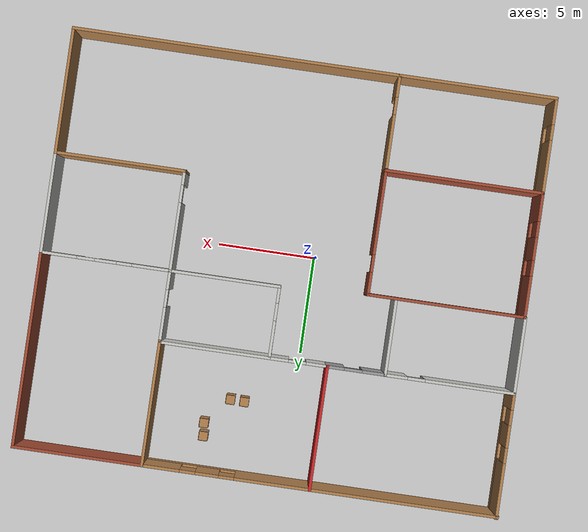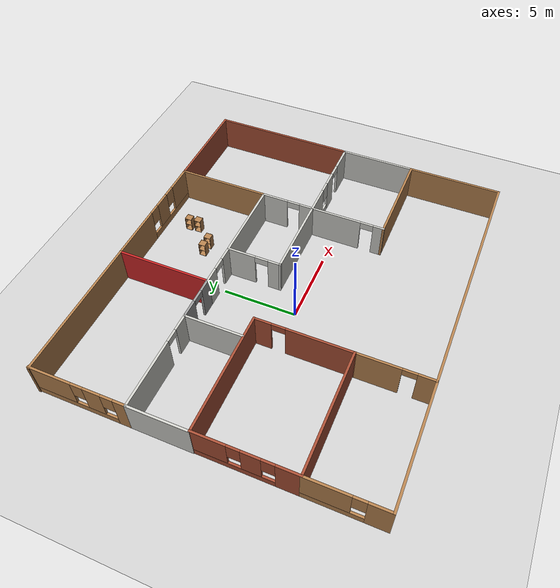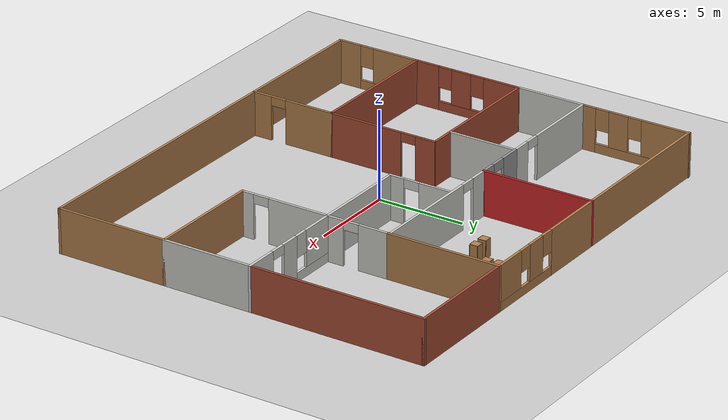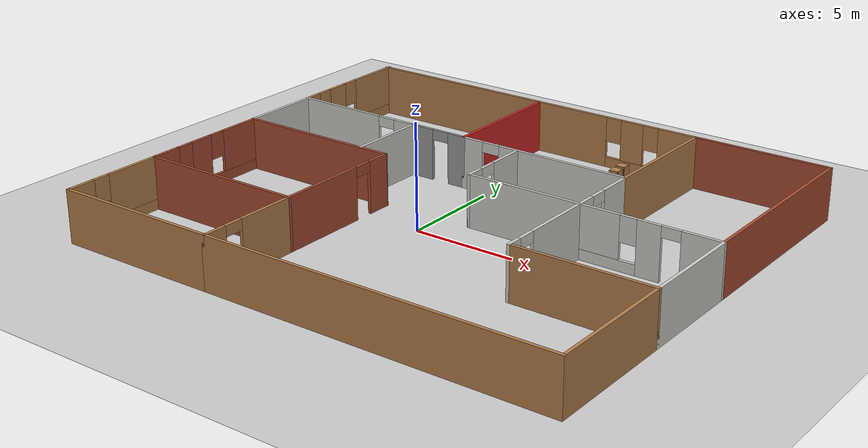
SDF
<sdf version="1.6">
 <world name="default">
  <model name="ground_plane">
   <static>1</static>
   <link name="link">
    <collision name="collision">
     <geometry><plane><normal>0 0 1</normal><size>100 100</size></plane></geometry>
     <surface><friction><ode><mu>100</mu><mu2>50</mu2></ode></friction></surface>
    </collision>
    <visual name="visual">
     <cast_shadows>0</cast_shadows>
     <geometry><plane><normal>0 0 1</normal><size>100 100</size></plane></geometry>
     <material>
      <script><uri>file://media/materials/scripts/gazebo.material</uri><name>Gazebo/Grey</name></script>
     </material>
    </visual>
   </link>
  </model>
  <model name="building">
   <pose>1.3748 0.98314 0 0 -0 0</pose>
   <link name="Wall_102">
    <pose>5.78961 2.52674 0 0 -0 1.5708</pose>
    <visual name="Wall_102_Visual_0">
     <pose>-1.35652 0 1.25 0 -0 0</pose>
     <geometry><box><size>1.03697 0.15 2.5</size></box></geometry>
     <material>
      <script><uri>file://media/materials/scripts/gazebo.material</uri><name>Gazebo/CeilingTiled</name></script>
      <ambient>1 1 1 1</ambient>
     </material>
     <meta><layer>0</layer></meta>
    </visual>
    <collision name="Wall_102_Collision_0">
     <geometry><box><size>1.03697 0.15 2.5</size></box></geometry>
     <pose>-1.35652 0 1.25 0 -0 0</pose>
    </collision>
    <visual name="Wall_102_Visual_1">
     <pose>0.968484 0 1.25 0 -0 0</pose>
     <geometry><box><size>1.81303 0.15 2.5</size></box></geometry>
     <material>
      <script><uri>file://media/materials/scripts/gazebo.material</uri><name>Gazebo/CeilingTiled</name></script>
      <ambient>1 1 1 1</ambient>
     </material>
     <meta><layer>0</layer></meta>
    </visual>
    <collision name="Wall_102_Collision_1">
     <geometry><box><size>1.81303 0.15 2.5</size></box></geometry>
     <pose>0.968484 0 1.25 0 -0 0</pose>
    </collision>
    <visual name="Wall_102_Visual_2">
     <pose>-0.388033 0 2.25 0 -0 0</pose>
     <geometry><box><size>0.9 0.15 0.5</size></box></geometry>
     <material>
      <script><uri>file://media/materials/scripts/gazebo.material</uri><name>Gazebo/CeilingTiled</name></script>
      <ambient>1 1 1 1</ambient>
     </material>
     <meta><layer>0</layer></meta>
    </visual>
    <collision name="Wall_102_Collision_2">
     <geometry><box><size>0.9 0.15 0.5</size></box></geometry>
     <pose>-0.388033 0 2.25 0 -0 0</pose>
    </collision>
   </link>
   <link name="Wall_104">
    <collision name="Wall_104_Collision">
     <geometry><box><size>6.45348 0.15 2.5</size></box></geometry>
     <pose>0 0 1.25 0 -0 0</pose>
    </collision>
    <visual name="Wall_104_Visual">
     <pose>0 0 1.25 0 -0 0</pose>
     <geometry><box><size>6.45348 0.15 2.5</size></box></geometry>
     <material>
      <script><uri>file://media/materials/scripts/gazebo.material</uri><name>Gazebo/Red</name></script>
      <ambient>1 1 1 1</ambient>
     </material>
     <meta><layer>0</layer></meta>
    </visual>
    <pose>-2.78961 7.525 0 0 -0 1.5708</pose>
   </link>
   <link name="Wall_107">
    <collision name="Wall_107_Collision">
     <geometry><box><size>6.5 0.15 2.5</size></box></geometry>
     <pose>0 0 1.25 0 -0 0</pose>
    </collision>
    <visual name="Wall_107_Visual">
     <pose>0 0 1.25 0 -0 0</pose>
     <geometry><box><size>6.5 0.15 2.5</size></box></geometry>
     <material>
      <script><uri>file://media/materials/scripts/gazebo.material</uri><name>Gazebo/Wood</name></script>
      <ambient>1 1 1 1</ambient>
     </material>
     <meta><layer>0</layer></meta>
    </visual>
    <pose>5.78961 7.50174 0 0 -0 1.5708</pose>
   </link>
   <link name="Wall_111">
    <pose>-12.342 7.54826 0 0 -0 1.5708</pose>
    <visual name="Wall_111_Visual_0">
     <pose>-2.8028 0 1.25 0 -0 0</pose>
     <geometry><box><size>0.894393 0.15 2.5</size></box></geometry>
     <material>
      <script><uri>file://media/materials/scripts/gazebo.material</uri><name>Gazebo/Wood</name></script>
      <ambient>1 1 1 1</ambient>
     </material>
     <meta><layer>0</layer></meta>
    </visual>
    <collision name="Wall_111_Collision_0">
     <geometry><box><size>0.894393 0.15 2.5</size></box></geometry>
     <pose>-2.8028 0 1.25 0 -0 0</pose>
    </collision>
    <visual name="Wall_111_Visual_1">
     <pose>0.447197 0 0.25 0 -0 0</pose>
     <geometry><box><size>5.60561 0.15 0.5</size></box></geometry>
     <material>
      <script><uri>file://media/materials/scripts/gazebo.material</uri><name>Gazebo/Wood</name></script>
      <ambient>1 1 1 1</ambient>
     </material>
     <meta><layer>0</layer></meta>
    </visual>
    <collision name="Wall_111_Collision_1">
     <geometry><box><size>5.60561 0.15 0.5</size></box></geometry>
     <pose>0.447197 0 0.25 0 -0 0</pose>
    </collision>
    <visual name="Wall_111_Visual_2">
     <pose>-0.984121 0 1.5 0 -0 0</pose>
     <geometry><box><size>1.14297 0.15 2</size></box></geometry>
     <material>
      <script><uri>file://media/materials/scripts/gazebo.material</uri><name>Gazebo/Wood</name></script>
      <ambient>1 1 1 1</ambient>
     </material>
     <meta><layer>0</layer></meta>
    </visual>
    <collision name="Wall_111_Collision_2">
     <geometry><box><size>1.14297 0.15 2</size></box></geometry>
     <pose>-0.984121 0 1.5 0 -0 0</pose>
    </collision>
    <visual name="Wall_111_Visual_3">
     <pose>1.81868 0 1.5 0 -0 0</pose>
     <geometry><box><size>2.86264 0.15 2</size></box></geometry>
     <material>
      <script><uri>file://media/materials/scripts/gazebo.material</uri><name>Gazebo/Wood</name></script>
      <ambient>1 1 1 1</ambient>
     </material>
     <meta><layer>0</layer></meta>
    </visual>
    <collision name="Wall_111_Collision_3">
     <geometry><box><size>2.86264 0.15 2</size></box></geometry>
     <pose>1.81868 0 1.5 0 -0 0</pose>
    </collision>
    <visual name="Wall_111_Visual_4">
     <pose>-1.95561 0 1.9 0 -0 0</pose>
     <geometry><box><size>0.8 0.15 1.2</size></box></geometry>
     <material>
      <script><uri>file://media/materials/scripts/gazebo.material</uri><name>Gazebo/Wood</name></script>
      <ambient>1 1 1 1</ambient>
     </material>
     <meta><layer>0</layer></meta>
    </visual>
    <collision name="Wall_111_Collision_4">
     <geometry><box><size>0.8 0.15 1.2</size></box></geometry>
     <pose>-1.95561 0 1.9 0 -0 0</pose>
    </collision>
    <visual name="Wall_111_Visual_5">
     <pose>-0.012636 0 1.9 0 -0 0</pose>
     <geometry><box><size>0.8 0.15 1.2</size></box></geometry>
     <material>
      <script><uri>file://media/materials/scripts/gazebo.material</uri><name>Gazebo/Wood</name></script>
      <ambient>1 1 1 1</ambient>
     </material>
     <meta><layer>0</layer></meta>
    </visual>
    <collision name="Wall_111_Collision_5">
     <geometry><box><size>0.8 0.15 1.2</size></box></geometry>
     <pose>-0.012636 0 1.9 0 -0 0</pose>
    </collision>
   </link>
   <link name="Wall_115">
    <collision name="Wall_115_Collision">
     <geometry><box><size>9.75 0.15 2.5</size></box></geometry>
     <pose>0 0 1.25 0 -0 0</pose>
    </collision>
    <visual name="Wall_115_Visual">
     <pose>0 0 1.25 0 -0 0</pose>
     <geometry><box><size>9.75 0.15 2.5</size></box></geometry>
     <material>
      <script><uri>file://media/materials/scripts/gazebo.material</uri><name>Gazebo/Wood</name></script>
      <ambient>1 1 1 1</ambient>
     </material>
     <meta><layer>0</layer></meta>
    </visual>
    <pose>-7.58961 10.6767 0 0 -0 3.14159</pose>
   </link>
   <link name="Wall_118">
    <collision name="Wall_118_Collision">
     <geometry><box><size>6.75 0.15 2.5</size></box></geometry>
     <pose>0 0 1.25 0 -0 0</pose>
    </collision>
    <visual name="Wall_118_Visual">
     <pose>0 0 1.25 0 -0 0</pose>
     <geometry><box><size>6.75 0.15 2.5</size></box></geometry>
     <material>
      <script><uri>file://media/materials/scripts/gazebo.material</uri><name>Gazebo/Bricks</name></script>
      <ambient>1 1 1 1</ambient>
     </material>
     <meta><layer>0</layer></meta>
    </visual>
    <pose>9.08961 10.6767 0 0 -0 0</pose>
   </link>
   <link name="Wall_119">
    <collision name="Wall_119_Collision">
     <geometry><box><size>10 0.15 2.5</size></box></geometry>
     <pose>0 0 1.25 0 -0 0</pose>
    </collision>
    <visual name="Wall_119_Visual">
     <pose>0 0 1.25 0 -0 0</pose>
     <geometry><box><size>10 0.15 2.5</size></box></geometry>
     <material>
      <script><uri>file://media/materials/scripts/gazebo.material</uri><name>Gazebo/Bricks</name></script>
      <ambient>1 1 1 1</ambient>
     </material>
     <meta><layer>0</layer></meta>
    </visual>
    <pose>12.3896 5.75174 0 0 0 -1.5708</pose>
   </link>
   <link name="Wall_14">
    <collision name="Wall_14_Collision">
     <geometry><box><size>8.1171 0.15 2.5</size></box></geometry>
     <pose>0 0 1.25 0 -0 0</pose>
    </collision>
    <visual name="Wall_14_Visual">
     <pose>0 0 1.25 0 -0 0</pose>
     <geometry><box><size>8.1171 0.15 2.5</size></box></geometry>
     <material>
      <script><uri>file://media/materials/scripts/gazebo.material</uri><name>Gazebo/Wood</name></script>
      <ambient>1 1 1 1</ambient>
     </material>
     <meta><layer>0</layer></meta>
    </visual>
    <pose>-8.32684 -10.7233 0 0 -0 0</pose>
   </link>
   <link name="Wall_16">
    <pose>-4.29676 -8.29826 0 0 -0 1.5708</pose>
    <visual name="Wall_16_Visual_0">
     <pose>-1.90821 0 1.25 0 -0 0</pose>
     <geometry><box><size>1.18359 0.15 2.5</size></box></geometry>
     <material>
      <script><uri>file://media/materials/scripts/gazebo.material</uri><name>Gazebo/Wood</name></script>
      <ambient>1 1 1 1</ambient>
     </material>
     <meta><layer>0</layer></meta>
    </visual>
    <collision name="Wall_16_Collision_0">
     <geometry><box><size>1.18359 0.15 2.5</size></box></geometry>
     <pose>-1.90821 0 1.25 0 -0 0</pose>
    </collision>
    <visual name="Wall_16_Visual_1">
     <pose>1.04179 0 1.25 0 -0 0</pose>
     <geometry><box><size>2.91641 0.15 2.5</size></box></geometry>
     <material>
      <script><uri>file://media/materials/scripts/gazebo.material</uri><name>Gazebo/Wood</name></script>
      <ambient>1 1 1 1</ambient>
     </material>
     <meta><layer>0</layer></meta>
    </visual>
    <collision name="Wall_16_Collision_1">
     <geometry><box><size>2.91641 0.15 2.5</size></box></geometry>
     <pose>1.04179 0 1.25 0 -0 0</pose>
    </collision>
    <visual name="Wall_16_Visual_2">
     <pose>-0.866411 0 2.25 0 -0 0</pose>
     <geometry><box><size>0.9 0.15 0.5</size></box></geometry>
     <material>
      <script><uri>file://media/materials/scripts/gazebo.material</uri><name>Gazebo/Wood</name></script>
      <ambient>1 1 1 1</ambient>
     </material>
     <meta><layer>0</layer></meta>
    </visual>
    <collision name="Wall_16_Collision_2">
     <geometry><box><size>0.9 0.15 0.5</size></box></geometry>
     <pose>-0.866411 0 2.25 0 -0 0</pose>
    </collision>
   </link>
   <link name="Wall_20">
    <pose>-12.3104 -8.29826 0 0 -0 1.5708</pose>
    <visual name="Wall_20_Visual_0">
     <pose>-1.79068 0 1.25 0 -0 0</pose>
     <geometry><box><size>1.41863 0.15 2.5</size></box></geometry>
     <material>
      <script><uri>file://media/materials/scripts/gazebo.material</uri><name>Gazebo/Wood</name></script>
      <ambient>1 1 1 1</ambient>
     </material>
     <meta><layer>0</layer></meta>
    </visual>
    <collision name="Wall_20_Collision_0">
     <geometry><box><size>1.41863 0.15 2.5</size></box></geometry>
     <pose>-1.79068 0 1.25 0 -0 0</pose>
    </collision>
    <visual name="Wall_20_Visual_1">
     <pose>0.709317 0 0.25 0 -0 0</pose>
     <geometry><box><size>3.58137 0.15 0.5</size></box></geometry>
     <material>
      <script><uri>file://media/materials/scripts/gazebo.material</uri><name>Gazebo/Wood</name></script>
      <ambient>1 1 1 1</ambient>
     </material>
     <meta><layer>0</layer></meta>
    </visual>
    <collision name="Wall_20_Collision_1">
     <geometry><box><size>3.58137 0.15 0.5</size></box></geometry>
     <pose>0.709317 0 0.25 0 -0 0</pose>
    </collision>
    <visual name="Wall_20_Visual_2">
     <pose>1.10932 0 1.5 0 -0 0</pose>
     <geometry><box><size>2.78137 0.15 2</size></box></geometry>
     <material>
      <script><uri>file://media/materials/scripts/gazebo.material</uri><name>Gazebo/Wood</name></script>
      <ambient>1 1 1 1</ambient>
     </material>
     <meta><layer>0</layer></meta>
    </visual>
    <collision name="Wall_20_Collision_2">
     <geometry><box><size>2.78137 0.15 2</size></box></geometry>
     <pose>1.10932 0 1.5 0 -0 0</pose>
    </collision>
    <visual name="Wall_20_Visual_3">
     <pose>-0.681367 0 1.9 0 -0 0</pose>
     <geometry><box><size>0.8 0.15 1.2</size></box></geometry>
     <material>
      <script><uri>file://media/materials/scripts/gazebo.material</uri><name>Gazebo/Wood</name></script>
      <ambient>1 1 1 1</ambient>
     </material>
     <meta><layer>0</layer></meta>
    </visual>
    <collision name="Wall_20_Collision_3">
     <geometry><box><size>0.8 0.15 1.2</size></box></geometry>
     <pose>-0.681367 0 1.9 0 -0 0</pose>
    </collision>
   </link>
   <link name="Wall_22">
    <collision name="Wall_22_Collision">
     <geometry><box><size>8.16363 0.15 2.5</size></box></geometry>
     <pose>0 0 1.25 0 -0 0</pose>
    </collision>
    <visual name="Wall_22_Visual">
     <pose>0 0 1.25 0 -0 0</pose>
     <geometry><box><size>8.16363 0.15 2.5</size></box></geometry>
     <material>
      <script><uri>file://media/materials/scripts/gazebo.material</uri><name>Gazebo/Bricks</name></script>
      <ambient>1 1 1 1</ambient>
     </material>
     <meta><layer>0</layer></meta>
    </visual>
    <pose>-8.30358 -5.87326 0 0 -0 0</pose>
   </link>
   <link name="Wall_24">
    <collision name="Wall_24_Collision">
     <geometry><box><size>16.8829 0.15 2.5</size></box></geometry>
     <pose>0 0 1.25 0 -0 0</pose>
    </collision>
    <visual name="Wall_24_Visual">
     <pose>0 0 1.25 0 -0 0</pose>
     <geometry><box><size>16.8829 0.15 2.5</size></box></geometry>
     <material>
      <script><uri>file://media/materials/scripts/gazebo.material</uri><name>Gazebo/Wood</name></script>
      <ambient>1 1 1 1</ambient>
     </material>
     <meta><layer>0</layer></meta>
    </visual>
    <pose>4.02316 -10.7233 0 0 -0 0</pose>
   </link>
   <link name="Wall_26">
    <collision name="Wall_26_Collision">
     <geometry><box><size>6.5 0.15 2.5</size></box></geometry>
     <pose>0 0 1.25 0 -0 0</pose>
    </collision>
    <visual name="Wall_26_Visual">
     <pose>0 0 1.25 0 -0 0</pose>
     <geometry><box><size>6.5 0.15 2.5</size></box></geometry>
     <material>
      <script><uri>file://media/materials/scripts/gazebo.material</uri><name>Gazebo/Wood</name></script>
      <ambient>1 1 1 1</ambient>
     </material>
     <meta><layer>0</layer></meta>
    </visual>
    <pose>12.3896 -7.54826 0 0 -0 1.5708</pose>
   </link>
   <link name="Wall_27">
    <collision name="Wall_27_Collision">
     <geometry><box><size>6.75 0.15 2.5</size></box></geometry>
     <pose>0 0 1.25 0 -0 0</pose>
    </collision>
    <visual name="Wall_27_Visual">
     <pose>0 0 1.25 0 -0 0</pose>
     <geometry><box><size>6.75 0.15 2.5</size></box></geometry>
     <material>
      <script><uri>file://media/materials/scripts/gazebo.material</uri><name>Gazebo/Wood</name></script>
      <ambient>1 1 1 1</ambient>
     </material>
     <meta><layer>0</layer></meta>
    </visual>
    <pose>9.08961 -4.37326 0 0 -0 3.14159</pose>
   </link>
   <link name="Wall_33">
    <pose>-12.3104 -2.69826 0 0 -0 1.5708</pose>
    <visual name="Wall_33_Visual_0">
     <pose>-2.49071 0 1.25 0 -0 0</pose>
     <geometry><box><size>1.51858 0.15 2.5</size></box></geometry>
     <material>
      <script><uri>file://media/materials/scripts/gazebo.material</uri><name>Gazebo/Bricks</name></script>
      <ambient>1 1 1 1</ambient>
     </material>
     <meta><layer>0</layer></meta>
    </visual>
    <collision name="Wall_33_Collision_0">
     <geometry><box><size>1.51858 0.15 2.5</size></box></geometry>
     <pose>-2.49071 0 1.25 0 -0 0</pose>
    </collision>
    <visual name="Wall_33_Visual_1">
     <pose>0.759292 0 0.25 0 -0 0</pose>
     <geometry><box><size>4.98142 0.15 0.5</size></box></geometry>
     <material>
      <script><uri>file://media/materials/scripts/gazebo.material</uri><name>Gazebo/Bricks</name></script>
      <ambient>1 1 1 1</ambient>
     </material>
     <meta><layer>0</layer></meta>
    </visual>
    <collision name="Wall_33_Collision_1">
     <geometry><box><size>4.98142 0.15 0.5</size></box></geometry>
     <pose>0.759292 0 0.25 0 -0 0</pose>
    </collision>
    <visual name="Wall_33_Visual_2">
     <pose>-0.3368 0 1.5 0 -0 0</pose>
     <geometry><box><size>1.18923 0.15 2</size></box></geometry>
     <material>
      <script><uri>file://media/materials/scripts/gazebo.material</uri><name>Gazebo/Bricks</name></script>
      <ambient>1 1 1 1</ambient>
     </material>
     <meta><layer>0</layer></meta>
    </visual>
    <collision name="Wall_33_Collision_2">
     <geometry><box><size>1.18923 0.15 2</size></box></geometry>
     <pose>-0.3368 0 1.5 0 -0 0</pose>
    </collision>
    <visual name="Wall_33_Visual_3">
     <pose>2.15391 0 1.5 0 -0 0</pose>
     <geometry><box><size>2.19218 0.15 2</size></box></geometry>
     <material>
      <script><uri>file://media/materials/scripts/gazebo.material</uri><name>Gazebo/Bricks</name></script>
      <ambient>1 1 1 1</ambient>
     </material>
     <meta><layer>0</layer></meta>
    </visual>
    <collision name="Wall_33_Collision_3">
     <geometry><box><size>2.19218 0.15 2</size></box></geometry>
     <pose>2.15391 0 1.5 0 -0 0</pose>
    </collision>
    <visual name="Wall_33_Visual_4">
     <pose>-1.33142 0 1.9 0 -0 0</pose>
     <geometry><box><size>0.8 0.15 1.2</size></box></geometry>
     <material>
      <script><uri>file://media/materials/scripts/gazebo.material</uri><name>Gazebo/Bricks</name></script>
      <ambient>1 1 1 1</ambient>
     </material>
     <meta><layer>0</layer></meta>
    </visual>
    <collision name="Wall_33_Collision_4">
     <geometry><box><size>0.8 0.15 1.2</size></box></geometry>
     <pose>-1.33142 0 1.9 0 -0 0</pose>
    </collision>
    <visual name="Wall_33_Visual_5">
     <pose>0.657816 0 1.9 0 -0 0</pose>
     <geometry><box><size>0.8 0.15 1.2</size></box></geometry>
     <material>
      <script><uri>file://media/materials/scripts/gazebo.material</uri><name>Gazebo/Bricks</name></script>
      <ambient>1 1 1 1</ambient>
     </material>
     <meta><layer>0</layer></meta>
    </visual>
    <collision name="Wall_33_Collision_5">
     <geometry><box><size>0.8 0.15 1.2</size></box></geometry>
     <pose>0.657816 0 1.9 0 -0 0</pose>
    </collision>
   </link>
   <link name="Wall_34">
    <collision name="Wall_34_Collision">
     <geometry><box><size>8.16363 0.15 2.5</size></box></geometry>
     <pose>0 0 1.25 0 -0 0</pose>
    </collision>
    <visual name="Wall_34_Visual">
     <pose>0 0 1.25 0 -0 0</pose>
     <geometry><box><size>8.16363 0.15 2.5</size></box></geometry>
     <material>
      <script><uri>file://media/materials/scripts/gazebo.material</uri><name>Gazebo/Bricks</name></script>
      <ambient>1 1 1 1</ambient>
     </material>
     <meta><layer>0</layer></meta>
    </visual>
    <pose>-8.30358 0.476738 0 0 -0 0</pose>
   </link>
   <link name="Wall_35">
    <pose>-4.29676 -2.74479 0 0 0 -1.5708</pose>
    <visual name="Wall_35_Visual_0">
     <pose>-2.66441 0 1.25 0 -0 0</pose>
     <geometry><box><size>1.17118 0.15 2.5</size></box></geometry>
     <material>
      <script><uri>file://media/materials/scripts/gazebo.material</uri><name>Gazebo/Bricks</name></script>
      <ambient>1 1 1 1</ambient>
     </material>
     <meta><layer>0</layer></meta>
    </visual>
    <collision name="Wall_35_Collision_0">
     <geometry><box><size>1.17118 0.15 2.5</size></box></geometry>
     <pose>-2.66441 0 1.25 0 -0 0</pose>
    </collision>
    <visual name="Wall_35_Visual_1">
     <pose>1.03559 0 1.25 0 -0 0</pose>
     <geometry><box><size>4.42882 0.15 2.5</size></box></geometry>
     <material>
      <script><uri>file://media/materials/scripts/gazebo.material</uri><name>Gazebo/Bricks</name></script>
      <ambient>1 1 1 1</ambient>
     </material>
     <meta><layer>0</layer></meta>
    </visual>
    <collision name="Wall_35_Collision_1">
     <geometry><box><size>4.42882 0.15 2.5</size></box></geometry>
     <pose>1.03559 0 1.25 0 -0 0</pose>
    </collision>
    <visual name="Wall_35_Visual_2">
     <pose>-1.62882 0 2.25 0 -0 0</pose>
     <geometry><box><size>0.9 0.15 0.5</size></box></geometry>
     <material>
      <script><uri>file://media/materials/scripts/gazebo.material</uri><name>Gazebo/Bricks</name></script>
      <ambient>1 1 1 1</ambient>
     </material>
     <meta><layer>0</layer></meta>
    </visual>
    <collision name="Wall_35_Collision_2">
     <geometry><box><size>0.9 0.15 0.5</size></box></geometry>
     <pose>-1.62882 0 2.25 0 -0 0</pose>
    </collision>
   </link>
   <link name="Wall_69">
    <pose>1.46157 10.6767 0 0 -0 0</pose>
    <visual name="Wall_69_Visual_0">
     <pose>-2.34247 0 1.25 0 -0 0</pose>
     <geometry><box><size>3.92114 0.15 2.5</size></box></geometry>
     <material>
      <script><uri>file://media/materials/scripts/gazebo.material</uri><name>Gazebo/Wood</name></script>
      <ambient>1 1 1 1</ambient>
     </material>
     <meta><layer>0</layer></meta>
    </visual>
    <collision name="Wall_69_Collision_0">
     <geometry><box><size>3.92114 0.15 2.5</size></box></geometry>
     <pose>-2.34247 0 1.25 0 -0 0</pose>
    </collision>
    <visual name="Wall_69_Visual_1">
     <pose>1.96057 0 0.25 0 -0 0</pose>
     <geometry><box><size>4.68495 0.15 0.5</size></box></geometry>
     <material>
      <script><uri>file://media/materials/scripts/gazebo.material</uri><name>Gazebo/Wood</name></script>
      <ambient>1 1 1 1</ambient>
     </material>
     <meta><layer>0</layer></meta>
    </visual>
    <collision name="Wall_69_Collision_1">
     <geometry><box><size>4.68495 0.15 0.5</size></box></geometry>
     <pose>1.96057 0 0.25 0 -0 0</pose>
    </collision>
    <visual name="Wall_69_Visual_2">
     <pose>1.01271 0 1.5 0 -0 0</pose>
     <geometry><box><size>1.18923 0.15 2</size></box></geometry>
     <material>
      <script><uri>file://media/materials/scripts/gazebo.material</uri><name>Gazebo/Wood</name></script>
      <ambient>1 1 1 1</ambient>
     </material>
     <meta><layer>0</layer></meta>
    </visual>
    <collision name="Wall_69_Collision_2">
     <geometry><box><size>1.18923 0.15 2</size></box></geometry>
     <pose>1.01271 0 1.5 0 -0 0</pose>
    </collision>
    <visual name="Wall_69_Visual_3">
     <pose>3.35519 0 1.5 0 -0 0</pose>
     <geometry><box><size>1.89572 0.15 2</size></box></geometry>
     <material>
      <script><uri>file://media/materials/scripts/gazebo.material</uri><name>Gazebo/Wood</name></script>
      <ambient>1 1 1 1</ambient>
     </material>
     <meta><layer>0</layer></meta>
    </visual>
    <collision name="Wall_69_Collision_3">
     <geometry><box><size>1.89572 0.15 2</size></box></geometry>
     <pose>3.35519 0 1.5 0 -0 0</pose>
    </collision>
    <visual name="Wall_69_Visual_4">
     <pose>0.018094 0 1.9 0 -0 0</pose>
     <geometry><box><size>0.8 0.15 1.2</size></box></geometry>
     <material>
      <script><uri>file://media/materials/scripts/gazebo.material</uri><name>Gazebo/Wood</name></script>
      <ambient>1 1 1 1</ambient>
     </material>
     <meta><layer>0</layer></meta>
    </visual>
    <collision name="Wall_69_Collision_4">
     <geometry><box><size>0.8 0.15 1.2</size></box></geometry>
     <pose>0.018094 0 1.9 0 -0 0</pose>
    </collision>
    <visual name="Wall_69_Visual_5">
     <pose>2.00733 0 1.9 0 -0 0</pose>
     <geometry><box><size>0.8 0.15 1.2</size></box></geometry>
     <material>
      <script><uri>file://media/materials/scripts/gazebo.material</uri><name>Gazebo/Wood</name></script>
      <ambient>1 1 1 1</ambient>
     </material>
     <meta><layer>0</layer></meta>
    </visual>
    <collision name="Wall_69_Collision_5">
     <geometry><box><size>0.8 0.15 1.2</size></box></geometry>
     <pose>2.00733 0 1.9 0 -0 0</pose>
    </collision>
   </link>
   <link name="Wall_72">
    <collision name="Wall_72_Collision">
     <geometry><box><size>5.25 0.15 2.5</size></box></geometry>
     <pose>0 0 1.25 0 -0 0</pose>
    </collision>
    <visual name="Wall_72_Visual">
     <pose>0 0 1.25 0 -0 0</pose>
     <geometry><box><size>5.25 0.15 2.5</size></box></geometry>
     <material>
      <script><uri>file://media/materials/scripts/gazebo.material</uri><name>Gazebo/CeilingTiled</name></script>
      <ambient>1 1 1 1</ambient>
     </material>
     <meta><layer>0</layer></meta>
    </visual>
    <pose>12.3896 -1.82326 0 0 -0 1.5708</pose>
   </link>
   <link name="Wall_75">
    <pose>5.78961 -1.82326 0 0 -0 1.5708</pose>
    <visual name="Wall_75_Visual_0">
     <pose>-2.23326 0 1.25 0 -0 0</pose>
     <geometry><box><size>0.783487 0.15 2.5</size></box></geometry>
     <material>
      <script><uri>file://media/materials/scripts/gazebo.material</uri><name>Gazebo/CeilingTiled</name></script>
      <ambient>1 1 1 1</ambient>
     </material>
     <meta><layer>0</layer></meta>
    </visual>
    <collision name="Wall_75_Collision_0">
     <geometry><box><size>0.783487 0.15 2.5</size></box></geometry>
     <pose>-2.23326 0 1.25 0 -0 0</pose>
    </collision>
    <visual name="Wall_75_Visual_1">
     <pose>0.841744 0 1.25 0 -0 0</pose>
     <geometry><box><size>3.56651 0.15 2.5</size></box></geometry>
     <material>
      <script><uri>file://media/materials/scripts/gazebo.material</uri><name>Gazebo/CeilingTiled</name></script>
      <ambient>1 1 1 1</ambient>
     </material>
     <meta><layer>0</layer></meta>
    </visual>
    <collision name="Wall_75_Collision_1">
     <geometry><box><size>3.56651 0.15 2.5</size></box></geometry>
     <pose>0.841744 0 1.25 0 -0 0</pose>
    </collision>
    <visual name="Wall_75_Visual_2">
     <pose>-1.39151 0 2.25 0 -0 0</pose>
     <geometry><box><size>0.9 0.15 0.5</size></box></geometry>
     <material>
      <script><uri>file://media/materials/scripts/gazebo.material</uri><name>Gazebo/CeilingTiled</name></script>
      <ambient>1 1 1 1</ambient>
     </material>
     <meta><layer>0</layer></meta>
    </visual>
    <collision name="Wall_75_Collision_2">
     <geometry><box><size>0.9 0.15 0.5</size></box></geometry>
     <pose>-1.39151 0 2.25 0 -0 0</pose>
    </collision>
   </link>
   <link name="Wall_77">
    <pose>9.08961 0.726738 0 0 -0 3.14159</pose>
    <visual name="Wall_77_Visual_0">
     <pose>-2.4187 0 1.25 0 -0 0</pose>
     <geometry><box><size>1.91261 0.15 2.5</size></box></geometry>
     <material>
      <script><uri>file://media/materials/scripts/gazebo.material</uri><name>Gazebo/CeilingTiled</name></script>
      <ambient>1 1 1 1</ambient>
     </material>
     <meta><layer>0</layer></meta>
    </visual>
    <collision name="Wall_77_Collision_0">
     <geometry><box><size>1.91261 0.15 2.5</size></box></geometry>
     <pose>-2.4187 0 1.25 0 -0 0</pose>
    </collision>
    <visual name="Wall_77_Visual_1">
     <pose>-0.007028 0 1.25 0 -0 0</pose>
     <geometry><box><size>1.11073 0.15 2.5</size></box></geometry>
     <material>
      <script><uri>file://media/materials/scripts/gazebo.material</uri><name>Gazebo/CeilingTiled</name></script>
      <ambient>1 1 1 1</ambient>
     </material>
     <meta><layer>0</layer></meta>
    </visual>
    <collision name="Wall_77_Collision_1">
     <geometry><box><size>1.11073 0.15 2.5</size></box></geometry>
     <pose>-0.007028 0 1.25 0 -0 0</pose>
    </collision>
    <visual name="Wall_77_Visual_2">
     <pose>1.96167 0 0.25 0 -0 0</pose>
     <geometry><box><size>2.82666 0.15 0.5</size></box></geometry>
     <material>
      <script><uri>file://media/materials/scripts/gazebo.material</uri><name>Gazebo/CeilingTiled</name></script>
      <ambient>1 1 1 1</ambient>
     </material>
     <meta><layer>0</layer></meta>
    </visual>
    <collision name="Wall_77_Collision_2">
     <geometry><box><size>2.82666 0.15 0.5</size></box></geometry>
     <pose>1.96167 0 0.25 0 -0 0</pose>
    </collision>
    <visual name="Wall_77_Visual_3">
     <pose>2.36167 0 1.5 0 -0 0</pose>
     <geometry><box><size>2.02666 0.15 2</size></box></geometry>
     <material>
      <script><uri>file://media/materials/scripts/gazebo.material</uri><name>Gazebo/CeilingTiled</name></script>
      <ambient>1 1 1 1</ambient>
     </material>
     <meta><layer>0</layer></meta>
    </visual>
    <collision name="Wall_77_Collision_3">
     <geometry><box><size>2.02666 0.15 2</size></box></geometry>
     <pose>2.36167 0 1.5 0 -0 0</pose>
    </collision>
    <visual name="Wall_77_Visual_4">
     <pose>0.948336 0 1.9 0 -0 0</pose>
     <geometry><box><size>0.8 0.15 1.2</size></box></geometry>
     <material>
      <script><uri>file://media/materials/scripts/gazebo.material</uri><name>Gazebo/CeilingTiled</name></script>
      <ambient>1 1 1 1</ambient>
     </material>
     <meta><layer>0</layer></meta>
    </visual>
    <collision name="Wall_77_Collision_4">
     <geometry><box><size>0.8 0.15 1.2</size></box></geometry>
     <pose>0.948336 0 1.9 0 -0 0</pose>
    </collision>
    <visual name="Wall_77_Visual_5">
     <pose>-1.01239 0 2.25 0 -0 0</pose>
     <geometry><box><size>0.9 0.15 0.5</size></box></geometry>
     <material>
      <script><uri>file://media/materials/scripts/gazebo.material</uri><name>Gazebo/CeilingTiled</name></script>
      <ambient>1 1 1 1</ambient>
     </material>
     <meta><layer>0</layer></meta>
    </visual>
    <collision name="Wall_77_Collision_5">
     <geometry><box><size>0.9 0.15 0.5</size></box></geometry>
     <pose>-1.01239 0 2.25 0 -0 0</pose>
    </collision>
   </link>
   <link name="Wall_83">
    <pose>1.47078 4.37326 0 0 -0 0</pose>
    <visual name="Wall_83_Visual_0">
     <pose>-3.73839 0 1.25 0 -0 0</pose>
     <geometry><box><size>1.14775 0.15 2.5</size></box></geometry>
     <material>
      <script><uri>file://media/materials/scripts/gazebo.material</uri><name>Gazebo/CeilingTiled</name></script>
      <ambient>1 1 1 1</ambient>
     </material>
     <meta><layer>0</layer></meta>
    </visual>
    <collision name="Wall_83_Collision_0">
     <geometry><box><size>1.14775 0.15 2.5</size></box></geometry>
     <pose>-3.73839 0 1.25 0 -0 0</pose>
    </collision>
    <visual name="Wall_83_Visual_1">
     <pose>1.02388 0 1.25 0 -0 0</pose>
     <geometry><box><size>6.57677 0.15 2.5</size></box></geometry>
     <material>
      <script><uri>file://media/materials/scripts/gazebo.material</uri><name>Gazebo/CeilingTiled</name></script>
      <ambient>1 1 1 1</ambient>
     </material>
     <meta><layer>0</layer></meta>
    </visual>
    <collision name="Wall_83_Collision_1">
     <geometry><box><size>6.57677 0.15 2.5</size></box></geometry>
     <pose>1.02388 0 1.25 0 -0 0</pose>
    </collision>
    <visual name="Wall_83_Visual_2">
     <pose>-2.71451 0 2.25 0 -0 0</pose>
     <geometry><box><size>0.9 0.15 0.5</size></box></geometry>
     <material>
      <script><uri>file://media/materials/scripts/gazebo.material</uri><name>Gazebo/CeilingTiled</name></script>
      <ambient>1 1 1 1</ambient>
     </material>
     <meta><layer>0</layer></meta>
    </visual>
    <collision name="Wall_83_Collision_2">
     <geometry><box><size>0.9 0.15 0.5</size></box></geometry>
     <pose>-2.71451 0 2.25 0 -0 0</pose>
    </collision>
   </link>
   <link name="Wall_85">
    <collision name="Wall_85_Collision">
     <geometry><box><size>5.75 0.15 2.5</size></box></geometry>
     <pose>0 0 1.25 0 -0 0</pose>
    </collision>
    <visual name="Wall_85_Visual">
     <pose>0 0 1.25 0 -0 0</pose>
     <geometry><box><size>5.75 0.15 2.5</size></box></geometry>
     <material>
      <script><uri>file://media/materials/scripts/gazebo.material</uri><name>Gazebo/CeilingTiled</name></script>
      <ambient>1 1 1 1</ambient>
     </material>
     <meta><layer>0</layer></meta>
    </visual>
    <pose>2.98961 0.726738 0 0 -0 3.14159</pose>
   </link>
   <link name="Wall_88">
    <pose>0.189609 2.52674 0 0 -0 1.5708</pose>
    <visual name="Wall_88_Visual_0">
     <pose>-1.41735 0 1.25 0 -0 0</pose>
     <geometry><box><size>0.915297 0.15 2.5</size></box></geometry>
     <material>
      <script><uri>file://media/materials/scripts/gazebo.material</uri><name>Gazebo/CeilingTiled</name></script>
      <ambient>1 1 1 1</ambient>
     </material>
     <meta><layer>0</layer></meta>
    </visual>
    <collision name="Wall_88_Collision_0">
     <geometry><box><size>0.915297 0.15 2.5</size></box></geometry>
     <pose>-1.41735 0 1.25 0 -0 0</pose>
    </collision>
    <visual name="Wall_88_Visual_1">
     <pose>0.907649 0 1.25 0 -0 0</pose>
     <geometry><box><size>1.9347 0.15 2.5</size></box></geometry>
     <material>
      <script><uri>file://media/materials/scripts/gazebo.material</uri><name>Gazebo/CeilingTiled</name></script>
      <ambient>1 1 1 1</ambient>
     </material>
     <meta><layer>0</layer></meta>
    </visual>
    <collision name="Wall_88_Collision_1">
     <geometry><box><size>1.9347 0.15 2.5</size></box></geometry>
     <pose>0.907649 0 1.25 0 -0 0</pose>
    </collision>
    <visual name="Wall_88_Visual_2">
     <pose>-0.509703 0 2.25 0 -0 0</pose>
     <geometry><box><size>0.9 0.15 0.5</size></box></geometry>
     <material>
      <script><uri>file://media/materials/scripts/gazebo.material</uri><name>Gazebo/CeilingTiled</name></script>
      <ambient>1 1 1 1</ambient>
     </material>
     <meta><layer>0</layer></meta>
    </visual>
    <collision name="Wall_88_Collision_2">
     <geometry><box><size>0.9 0.15 0.5</size></box></geometry>
     <pose>-0.509703 0 2.25 0 -0 0</pose>
    </collision>
   </link>
   <link name="Wall_90">
    <pose>-4.25422 4.37326 0 0 -0 3.14159</pose>
    <visual name="Wall_90_Visual_0">
     <pose>-1.08199 0 1.25 0 -0 0</pose>
     <geometry><box><size>0.961491 0.15 2.5</size></box></geometry>
     <material>
      <script><uri>file://media/materials/scripts/gazebo.material</uri><name>Gazebo/Grey</name></script>
      <ambient>1 1 1 1</ambient>
     </material>
     <meta><layer>0</layer></meta>
    </visual>
    <collision name="Wall_90_Collision_0">
     <geometry><box><size>0.961491 0.15 2.5</size></box></geometry>
     <pose>-1.08199 0 1.25 0 -0 0</pose>
    </collision>
    <visual name="Wall_90_Visual_1">
     <pose>0.930745 0 1.25 0 -0 0</pose>
     <geometry><box><size>1.26398 0.15 2.5</size></box></geometry>
     <material>
      <script><uri>file://media/materials/scripts/gazebo.material</uri><name>Gazebo/Grey</name></script>
      <ambient>1 1 1 1</ambient>
     </material>
     <meta><layer>0</layer></meta>
    </visual>
    <collision name="Wall_90_Collision_1">
     <geometry><box><size>1.26398 0.15 2.5</size></box></geometry>
     <pose>0.930745 0 1.25 0 -0 0</pose>
    </collision>
    <visual name="Wall_90_Visual_2">
     <pose>-0.151246 0 2.25 0 -0 0</pose>
     <geometry><box><size>0.9 0.15 0.5</size></box></geometry>
     <material>
      <script><uri>file://media/materials/scripts/gazebo.material</uri><name>Gazebo/Grey</name></script>
      <ambient>1 1 1 1</ambient>
     </material>
     <meta><layer>0</layer></meta>
    </visual>
    <collision name="Wall_90_Collision_2">
     <geometry><box><size>0.9 0.15 0.5</size></box></geometry>
     <pose>-0.151246 0 2.25 0 -0 0</pose>
    </collision>
   </link>
   <link name="Wall_93">
    <collision name="Wall_93_Collision">
     <geometry><box><size>4 0.15 2.5</size></box></geometry>
     <pose>0 0 1.25 0 -0 0</pose>
    </collision>
    <visual name="Wall_93_Visual">
     <pose>0 0 1.25 0 -0 0</pose>
     <geometry><box><size>4 0.15 2.5</size></box></geometry>
     <material>
      <script><uri>file://media/materials/scripts/gazebo.material</uri><name>Gazebo/CeilingTiled</name></script>
      <ambient>1 1 1 1</ambient>
     </material>
     <meta><layer>0</layer></meta>
    </visual>
    <pose>-5.74195 2.44826 0 0 0 -1.5708</pose>
   </link>
   <link name="Wall_95">
    <pose>-9.04195 4.37326 0 0 -0 3.14159</pose>
    <visual name="Wall_95_Visual_0">
     <pose>-2.76986 0 1.25 0 -0 0</pose>
     <geometry><box><size>1.21027 0.15 2.5</size></box></geometry>
     <material>
      <script><uri>file://media/materials/scripts/gazebo.material</uri><name>Gazebo/CeilingTiled</name></script>
      <ambient>1 1 1 1</ambient>
     </material>
     <meta><layer>0</layer></meta>
    </visual>
    <collision name="Wall_95_Collision_0">
     <geometry><box><size>1.21027 0.15 2.5</size></box></geometry>
     <pose>-2.76986 0 1.25 0 -0 0</pose>
    </collision>
    <visual name="Wall_95_Visual_1">
     <pose>1.05514 0 1.25 0 -0 0</pose>
     <geometry><box><size>4.63973 0.15 2.5</size></box></geometry>
     <material>
      <script><uri>file://media/materials/scripts/gazebo.material</uri><name>Gazebo/CeilingTiled</name></script>
      <ambient>1 1 1 1</ambient>
     </material>
     <meta><layer>0</layer></meta>
    </visual>
    <collision name="Wall_95_Collision_1">
     <geometry><box><size>4.63973 0.15 2.5</size></box></geometry>
     <pose>1.05514 0 1.25 0 -0 0</pose>
    </collision>
    <visual name="Wall_95_Visual_2">
     <pose>-1.71473 0 2.25 0 -0 0</pose>
     <geometry><box><size>0.9 0.15 0.5</size></box></geometry>
     <material>
      <script><uri>file://media/materials/scripts/gazebo.material</uri><name>Gazebo/CeilingTiled</name></script>
      <ambient>1 1 1 1</ambient>
     </material>
     <meta><layer>0</layer></meta>
    </visual>
    <collision name="Wall_95_Collision_2">
     <geometry><box><size>0.9 0.15 0.5</size></box></geometry>
     <pose>-1.71473 0 2.25 0 -0 0</pose>
    </collision>
   </link>
   <link name="Wall_96">
    <collision name="Wall_96_Collision">
     <geometry><box><size>4 0.15 2.5</size></box></geometry>
     <pose>0 0 1.25 0 -0 0</pose>
    </collision>
    <visual name="Wall_96_Visual">
     <pose>0 0 1.25 0 -0 0</pose>
     <geometry><box><size>4 0.15 2.5</size></box></geometry>
     <material>
      <script><uri>file://media/materials/scripts/gazebo.material</uri><name>Gazebo/CeilingTiled</name></script>
      <ambient>1 1 1 1</ambient>
     </material>
     <meta><layer>0</layer></meta>
    </visual>
    <pose>-12.342 2.44826 0 0 0 -1.5708</pose>
   </link>
   <static>1</static>
  </model>
  <model name="cabinet_clone_3">
   <static>1</static>
   <link name="cabinet_bottom_plate">
    <inertial>
     <pose>0 0 -1 0 -0 0</pose>
     <inertia><ixx>2.05</ixx><ixy>0</ixy><ixz>0</ixz><iyy>2.05</iyy><iyz>0</iyz><izz>2.05</izz></inertia>
     <mass>25</mass>
    </inertial>
    <collision name="cabinet_bottom_plate_geom">
     <pose>0 0 0.01 0 -0 0</pose>
     <geometry><box><size>0.45 0.45 0.02</size></box></geometry>
    </collision>
    <visual name="cabinet_bottom_plate_geom_visual">
     <pose>0 0 0.01 0 -0 0</pose>
     <geometry><box><size>0.45 0.45 0.02</size></box></geometry>
     <material>
      <script><uri>file://media/materials/scripts/gazebo.material</uri><name>Gazebo/Wood</name></script>
     </material>
    </visual>
    <collision name="cabinet_bottom_plate_geom_cabinet_back_plate">
     <pose>0.235 0 0.51 0 -0 0</pose>
     <geometry><box><size>0.02 0.45 1.02</size></box></geometry>
    </collision>
    <visual name="cabinet_bottom_plate_geom_cabinet_back_plate_visual">
     <pose>0.235 0 0.51 0 -0 0</pose>
     <geometry><box><size>0.02 0.45 1.02</size></box></geometry>
     <material>
      <script><uri>file://media/materials/scripts/gazebo.material</uri><name>Gazebo/Wood</name></script>
     </material>
    </visual>
    <collision name="cabinet_bottom_plate_geom_cabinet_left_plate">
     <pose>0 0.235 0.51 0 -0 0</pose>
     <geometry><box><size>0.45 0.02 1.02</size></box></geometry>
    </collision>
    <visual name="cabinet_bottom_plate_geom_cabinet_left_plate_visual">
     <pose>0 0.235 0.51 0 -0 0</pose>
     <geometry><box><size>0.45 0.02 1.02</size></box></geometry>
     <material>
      <script><uri>file://media/materials/scripts/gazebo.material</uri><name>Gazebo/Wood</name></script>
     </material>
    </visual>
    <collision name="cabinet_bottom_plate_geom_cabinet_middle_plate">
     <pose>0 0 0.51 0 -0 0</pose>
     <geometry><box><size>0.45 0.45 0.02</size></box></geometry>
    </collision>
    <visual name="cabinet_bottom_plate_geom_cabinet_middle_plate_visual">
     <pose>0 0 0.51 0 -0 0</pose>
     <geometry><box><size>0.45 0.45 0.02</size></box></geometry>
     <material>
      <script><uri>file://media/materials/scripts/gazebo.material</uri><name>Gazebo/Wood</name></script>
     </material>
    </visual>
    <collision name="cabinet_bottom_plate_geom_cabinet_right_plate">
     <pose>0 -0.235 0.51 0 -0 0</pose>
     <geometry><box><size>0.45 0.02 1.02</size></box></geometry>
    </collision>
    <visual name="cabinet_bottom_plate_geom_cabinet_right_plate_visual">
     <pose>0 -0.235 0.51 0 -0 0</pose>
     <geometry><box><size>0.45 0.02 1.02</size></box></geometry>
     <material>
      <script><uri>file://media/materials/scripts/gazebo.material</uri><name>Gazebo/Wood</name></script>
     </material>
    </visual>
    <collision name="cabinet_bottom_plate_geom_cabinet_top_plate">
     <pose>0 0 1.01 0 -0 0</pose>
     <geometry><box><size>0.45 0.45 0.02</size></box></geometry>
    </collision>
    <visual name="cabinet_bottom_plate_geom_cabinet_top_plate_visual">
     <pose>0 0 1.01 0 -0 0</pose>
     <geometry><box><size>0.45 0.45 0.02</size></box></geometry>
     <material>
      <script><uri>file://media/materials/scripts/gazebo.material</uri><name>Gazebo/Wood</name></script>
     </material>
    </visual>
   </link>
   <pose>2.51064 7.88191 0 0 -0 0</pose>
  </model>
  <model name="cabinet_clone_4">
   <static>1</static>
   <link name="cabinet_bottom_plate">
    <inertial>
     <pose>0 0 -1 0 -0 0</pose>
     <inertia><ixx>2.05</ixx><ixy>0</ixy><ixz>0</ixz><iyy>2.05</iyy><iyz>0</iyz><izz>2.05</izz></inertia>
     <mass>25</mass>
    </inertial>
    <collision name="cabinet_bottom_plate_geom">
     <pose>0 0 0.01 0 -0 0</pose>
     <geometry><box><size>0.45 0.45 0.02</size></box></geometry>
    </collision>
    <visual name="cabinet_bottom_plate_geom_visual">
     <pose>0 0 0.01 0 -0 0</pose>
     <geometry><box><size>0.45 0.45 0.02</size></box></geometry>
     <material>
      <script><uri>file://media/materials/scripts/gazebo.material</uri><name>Gazebo/Wood</name></script>
     </material>
    </visual>
    <collision name="cabinet_bottom_plate_geom_cabinet_back_plate">
     <pose>0.235 0 0.51 0 -0 0</pose>
     <geometry><box><size>0.02 0.45 1.02</size></box></geometry>
    </collision>
    <visual name="cabinet_bottom_plate_geom_cabinet_back_plate_visual">
     <pose>0.235 0 0.51 0 -0 0</pose>
     <geometry><box><size>0.02 0.45 1.02</size></box></geometry>
     <material>
      <script><uri>file://media/materials/scripts/gazebo.material</uri><name>Gazebo/Wood</name></script>
     </material>
    </visual>
    <collision name="cabinet_bottom_plate_geom_cabinet_left_plate">
     <pose>0 0.235 0.51 0 -0 0</pose>
     <geometry><box><size>0.45 0.02 1.02</size></box></geometry>
    </collision>
    <visual name="cabinet_bottom_plate_geom_cabinet_left_plate_visual">
     <pose>0 0.235 0.51 0 -0 0</pose>
     <geometry><box><size>0.45 0.02 1.02</size></box></geometry>
     <material>
      <script><uri>file://media/materials/scripts/gazebo.material</uri><name>Gazebo/Wood</name></script>
     </material>
    </visual>
    <collision name="cabinet_bottom_plate_geom_cabinet_middle_plate">
     <pose>0 0 0.51 0 -0 0</pose>
     <geometry><box><size>0.45 0.45 0.02</size></box></geometry>
    </collision>
    <visual name="cabinet_bottom_plate_geom_cabinet_middle_plate_visual">
     <pose>0 0 0.51 0 -0 0</pose>
     <geometry><box><size>0.45 0.45 0.02</size></box></geometry>
     <material>
      <script><uri>file://media/materials/scripts/gazebo.material</uri><name>Gazebo/Wood</name></script>
     </material>
    </visual>
    <collision name="cabinet_bottom_plate_geom_cabinet_right_plate">
     <pose>0 -0.235 0.51 0 -0 0</pose>
     <geometry><box><size>0.45 0.02 1.02</size></box></geometry>
    </collision>
    <visual name="cabinet_bottom_plate_geom_cabinet_right_plate_visual">
     <pose>0 -0.235 0.51 0 -0 0</pose>
     <geometry><box><size>0.45 0.02 1.02</size></box></geometry>
     <material>
      <script><uri>file://media/materials/scripts/gazebo.material</uri><name>Gazebo/Wood</name></script>
     </material>
    </visual>
    <collision name="cabinet_bottom_plate_geom_cabinet_top_plate">
     <pose>0 0 1.01 0 -0 0</pose>
     <geometry><box><size>0.45 0.45 0.02</size></box></geometry>
    </collision>
    <visual name="cabinet_bottom_plate_geom_cabinet_top_plate_visual">
     <pose>0 0 1.01 0 -0 0</pose>
     <geometry><box><size>0.45 0.45 0.02</size></box></geometry>
     <material>
      <script><uri>file://media/materials/scripts/gazebo.material</uri><name>Gazebo/Wood</name></script>
     </material>
    </visual>
   </link>
   <pose>3.23952 7.8669 0 0 -0 0</pose>
  </model>
  <model name="cabinet_clone_5">
   <static>1</static>
   <link name="cabinet_bottom_plate">
    <inertial>
     <pose>0 0 -1 0 -0 0</pose>
     <inertia><ixx>2.05</ixx><ixy>0</ixy><ixz>0</ixz><iyy>2.05</iyy><iyz>0</iyz><izz>2.05</izz></inertia>
     <mass>25</mass>
    </inertial>
    <collision name="cabinet_bottom_plate_geom">
     <pose>0 0 0.01 0 -0 0</pose>
     <geometry><box><size>0.45 0.45 0.02</size></box></geometry>
    </collision>
    <visual name="cabinet_bottom_plate_geom_visual">
     <pose>0 0 0.01 0 -0 0</pose>
     <geometry><box><size>0.45 0.45 0.02</size></box></geometry>
     <material>
      <script><uri>file://media/materials/scripts/gazebo.material</uri><name>Gazebo/Wood</name></script>
     </material>
    </visual>
    <collision name="cabinet_bottom_plate_geom_cabinet_back_plate">
     <pose>0.235 0 0.51 0 -0 0</pose>
     <geometry><box><size>0.02 0.45 1.02</size></box></geometry>
    </collision>
    <visual name="cabinet_bottom_plate_geom_cabinet_back_plate_visual">
     <pose>0.235 0 0.51 0 -0 0</pose>
     <geometry><box><size>0.02 0.45 1.02</size></box></geometry>
     <material>
      <script><uri>file://media/materials/scripts/gazebo.material</uri><name>Gazebo/Wood</name></script>
     </material>
    </visual>
    <collision name="cabinet_bottom_plate_geom_cabinet_left_plate">
     <pose>0 0.235 0.51 0 -0 0</pose>
     <geometry><box><size>0.45 0.02 1.02</size></box></geometry>
    </collision>
    <visual name="cabinet_bottom_plate_geom_cabinet_left_plate_visual">
     <pose>0 0.235 0.51 0 -0 0</pose>
     <geometry><box><size>0.45 0.02 1.02</size></box></geometry>
     <material>
      <script><uri>file://media/materials/scripts/gazebo.material</uri><name>Gazebo/Wood</name></script>
     </material>
    </visual>
    <collision name="cabinet_bottom_plate_geom_cabinet_middle_plate">
     <pose>0 0 0.51 0 -0 0</pose>
     <geometry><box><size>0.45 0.45 0.02</size></box></geometry>
    </collision>
    <visual name="cabinet_bottom_plate_geom_cabinet_middle_plate_visual">
     <pose>0 0 0.51 0 -0 0</pose>
     <geometry><box><size>0.45 0.45 0.02</size></box></geometry>
     <material>
      <script><uri>file://media/materials/scripts/gazebo.material</uri><name>Gazebo/Wood</name></script>
     </material>
    </visual>
    <collision name="cabinet_bottom_plate_geom_cabinet_right_plate">
     <pose>0 -0.235 0.51 0 -0 0</pose>
     <geometry><box><size>0.45 0.02 1.02</size></box></geometry>
    </collision>
    <visual name="cabinet_bottom_plate_geom_cabinet_right_plate_visual">
     <pose>0 -0.235 0.51 0 -0 0</pose>
     <geometry><box><size>0.45 0.02 1.02</size></box></geometry>
     <material>
      <script><uri>file://media/materials/scripts/gazebo.material</uri><name>Gazebo/Wood</name></script>
     </material>
    </visual>
    <collision name="cabinet_bottom_plate_geom_cabinet_top_plate">
     <pose>0 0 1.01 0 -0 0</pose>
     <geometry><box><size>0.45 0.45 0.02</size></box></geometry>
    </collision>
    <visual name="cabinet_bottom_plate_geom_cabinet_top_plate_visual">
     <pose>0 0 1.01 0 -0 0</pose>
     <geometry><box><size>0.45 0.45 0.02</size></box></geometry>
     <material>
      <script><uri>file://media/materials/scripts/gazebo.material</uri><name>Gazebo/Wood</name></script>
     </material>
    </visual>
   </link>
   <pose>4.36247 9.93152 0 0 -0 0</pose>
  </model>
  <model name="cabinet_clone_6">
   <static>1</static>
   <link name="cabinet_bottom_plate">
    <inertial>
     <pose>0 0 -1 0 -0 0</pose>
     <inertia><ixx>2.05</ixx><ixy>0</ixy><ixz>0</ixz><iyy>2.05</iyy><iyz>0</iyz><izz>2.05</izz></inertia>
     <mass>25</mass>
    </inertial>
    <collision name="cabinet_bottom_plate_geom">
     <pose>0 0 0.01 0 -0 0</pose>
     <geometry><box><size>0.45 0.45 0.02</size></box></geometry>
    </collision>
    <visual name="cabinet_bottom_plate_geom_visual">
     <pose>0 0 0.01 0 -0 0</pose>
     <geometry><box><size>0.45 0.45 0.02</size></box></geometry>
     <material>
      <script><uri>file://media/materials/scripts/gazebo.material</uri><name>Gazebo/Wood</name></script>
     </material>
    </visual>
    <collision name="cabinet_bottom_plate_geom_cabinet_back_plate">
     <pose>0.235 0 0.51 0 -0 0</pose>
     <geometry><box><size>0.02 0.45 1.02</size></box></geometry>
    </collision>
    <visual name="cabinet_bottom_plate_geom_cabinet_back_plate_visual">
     <pose>0.235 0 0.51 0 -0 0</pose>
     <geometry><box><size>0.02 0.45 1.02</size></box></geometry>
     <material>
      <script><uri>file://media/materials/scripts/gazebo.material</uri><name>Gazebo/Wood</name></script>
     </material>
    </visual>
    <collision name="cabinet_bottom_plate_geom_cabinet_left_plate">
     <pose>0 0.235 0.51 0 -0 0</pose>
     <geometry><box><size>0.45 0.02 1.02</size></box></geometry>
    </collision>
    <visual name="cabinet_bottom_plate_geom_cabinet_left_plate_visual">
     <pose>0 0.235 0.51 0 -0 0</pose>
     <geometry><box><size>0.45 0.02 1.02</size></box></geometry>
     <material>
      <script><uri>file://media/materials/scripts/gazebo.material</uri><name>Gazebo/Wood</name></script>
     </material>
    </visual>
    <collision name="cabinet_bottom_plate_geom_cabinet_middle_plate">
     <pose>0 0 0.51 0 -0 0</pose>
     <geometry><box><size>0.45 0.45 0.02</size></box></geometry>
    </collision>
    <visual name="cabinet_bottom_plate_geom_cabinet_middle_plate_visual">
     <pose>0 0 0.51 0 -0 0</pose>
     <geometry><box><size>0.45 0.45 0.02</size></box></geometry>
     <material>
      <script><uri>file://media/materials/scripts/gazebo.material</uri><name>Gazebo/Wood</name></script>
     </material>
    </visual>
    <collision name="cabinet_bottom_plate_geom_cabinet_right_plate">
     <pose>0 -0.235 0.51 0 -0 0</pose>
     <geometry><box><size>0.45 0.02 1.02</size></box></geometry>
    </collision>
    <visual name="cabinet_bottom_plate_geom_cabinet_right_plate_visual">
     <pose>0 -0.235 0.51 0 -0 0</pose>
     <geometry><box><size>0.45 0.02 1.02</size></box></geometry>
     <material>
      <script><uri>file://media/materials/scripts/gazebo.material</uri><name>Gazebo/Wood</name></script>
     </material>
    </visual>
    <collision name="cabinet_bottom_plate_geom_cabinet_top_plate">
     <pose>0 0 1.01 0 -0 0</pose>
     <geometry><box><size>0.45 0.45 0.02</size></box></geometry>
    </collision>
    <visual name="cabinet_bottom_plate_geom_cabinet_top_plate_visual">
     <pose>0 0 1.01 0 -0 0</pose>
     <geometry><box><size>0.45 0.45 0.02</size></box></geometry>
     <material>
      <script><uri>file://media/materials/scripts/gazebo.material</uri><name>Gazebo/Wood</name></script>
     </material>
    </visual>
   </link>
   <pose>4.42476 9.25864 0 0 -0 0</pose>
  </model>
 </world>
</sdf>
